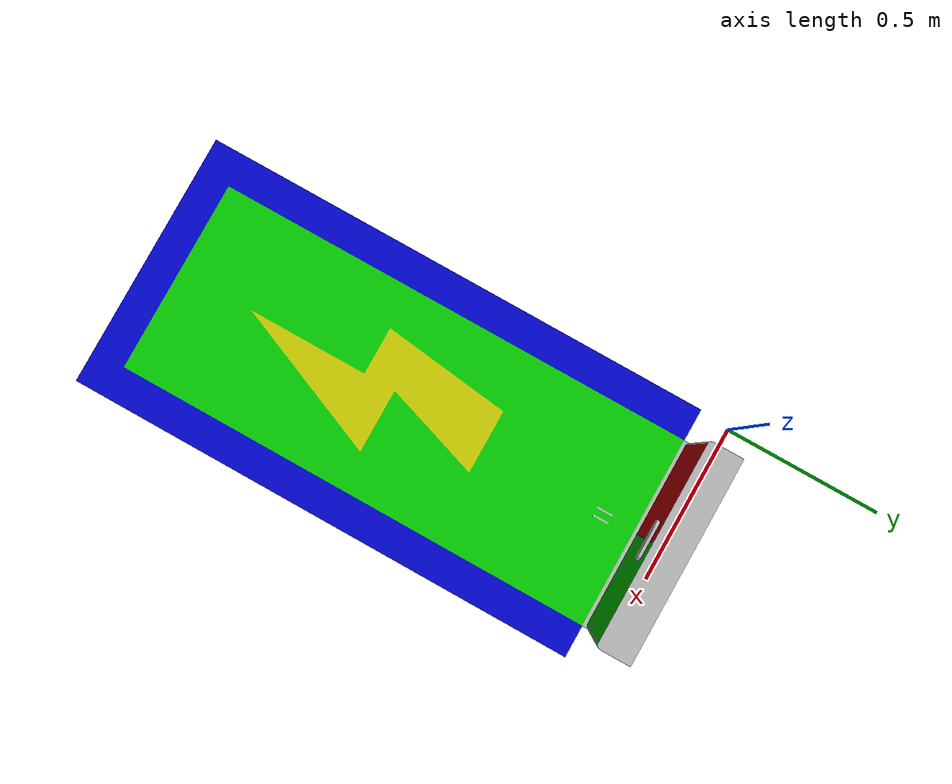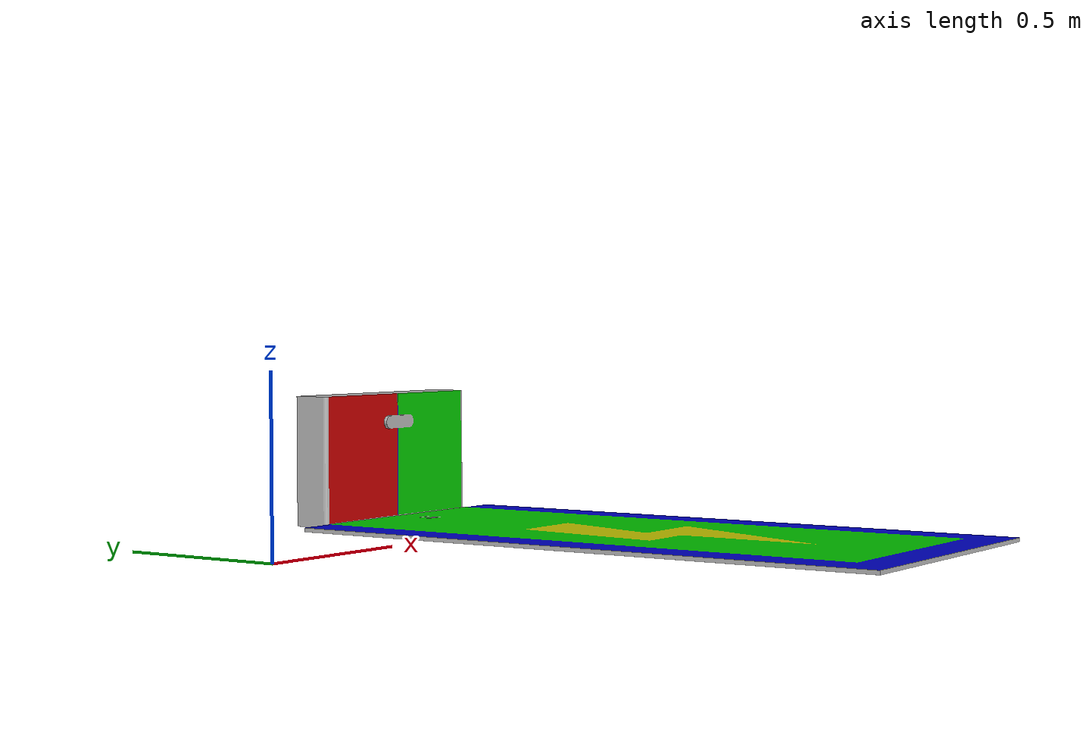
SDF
<?xml version="1.0" ?>
<sdf version="1.5">
  <model name="QRsarjunitesi">
   <static>true</static>
   <pose>0 0 0.1001 0 0 0</pose>
    <link name="link">
      <collision name="surface">

        <geometry>
          <mesh>
            <uri>model://QRsarjunitesi/meshes/sarjistasyonu.dae</uri>
          </mesh>
        </geometry>
      </collision>

      <collision name="base">

        <geometry>
          <mesh>
           <uri>model://QRsarjunitesi/meshes/sarjistasyonu.dae</uri>
          </mesh>
        </geometry>
      </collision>

      <visual name="visual">
        <geometry>
          <mesh>
            <uri>model://QRsarjunitesi/meshes/sarjistasyonu.dae</uri>
          </mesh>
        </geometry>
        <material>
          <script>
            <name>QRsarjunitesi</name>
            <uri>model://QRsarjunitesi/materials/scripts</uri>
            <uri>model://QRsarjunitesi/materials/textures</uri>
          </script>
        </material>
      </visual>
    </link>
  </model>
</sdf>
